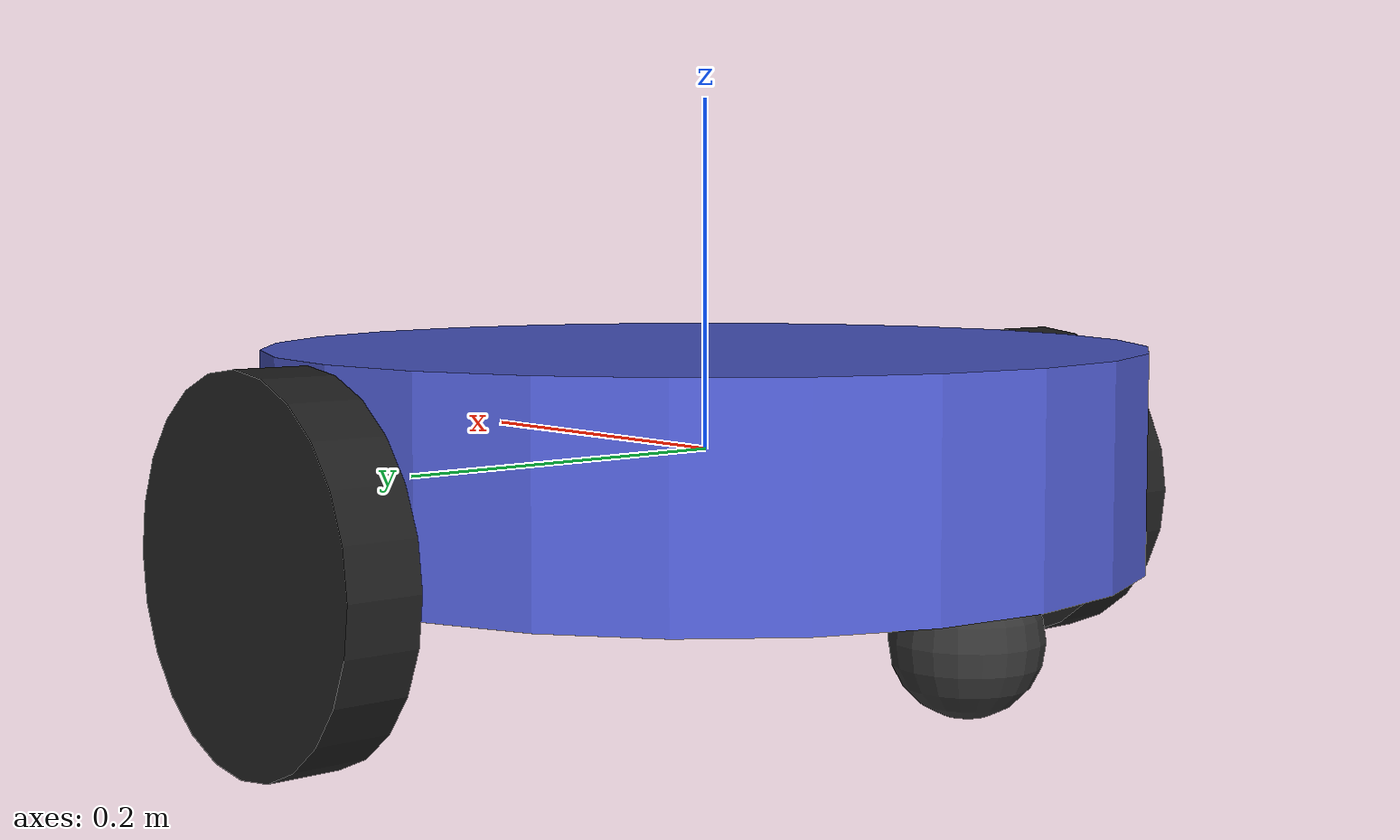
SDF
<?xml version="1.0"?>
<sdf version="1.9">
  <model name="patrol_bot">

    <!-- ── Chassis ──────────────────────────────────────────────────────────── -->
    <link name="base_link">
      <inertial>
        <mass>8.0</mass>
        <inertia>
          <ixx>0.30</ixx><iyy>0.30</iyy><izz>0.50</izz>
          <ixy>0</ixy><ixz>0</ixz><iyz>0</iyz>
        </inertia>
      </inertial>
      <collision name="collision">
        <geometry>
          <cylinder><radius>0.25</radius><length>0.12</length></cylinder>
        </geometry>
      </collision>
      <visual name="visual">
        <geometry>
          <cylinder><radius>0.25</radius><length>0.12</length></cylinder>
        </geometry>
        <material>
          <ambient>0.25 0.30 0.70 1</ambient>
          <diffuse>0.30 0.35 0.80 1</diffuse>
        </material>
      </visual>
    </link>

    <!-- ── Left wheel (y+) ───────────────────────────────────────────────── -->
    <link name="left_wheel">
      <pose>0 0.28 -0.04 -1.5707963 0 0</pose>
      <inertial>
        <mass>0.5</mass>
        <inertia>
          <ixx>0.0013</ixx><iyy>0.0013</iyy><izz>0.0025</izz>
          <ixy>0</ixy><ixz>0</ixz><iyz>0</iyz>
        </inertia>
      </inertial>
      <collision name="collision">
        <geometry>
          <cylinder><radius>0.10</radius><length>0.04</length></cylinder>
        </geometry>
        <surface><friction><ode>
          <mu>1.0</mu><mu2>0.5</mu2>
        </ode></friction></surface>
      </collision>
      <visual name="visual">
        <geometry>
          <cylinder><radius>0.10</radius><length>0.04</length></cylinder>
        </geometry>
        <material>
          <ambient>0.08 0.08 0.08 1</ambient>
          <diffuse>0.12 0.12 0.12 1</diffuse>
        </material>
      </visual>
    </link>

    <joint name="left_wheel_joint" type="revolute">
      <parent>base_link</parent>
      <child>left_wheel</child>
      <axis>
        <!-- Wheel spin axis = Y in model frame (left-right), expressed in model frame -->
        <xyz expressed_in="__model__">0 1 0</xyz>
        <dynamics><friction>0.01</friction><damping>0.01</damping></dynamics>
        <limit><lower>-1e9</lower><upper>1e9</upper><effort>1e6</effort></limit>
      </axis>
    </joint>

    <!-- ── Right wheel (y-) ──────────────────────────────────────────────── -->
    <link name="right_wheel">
      <pose>0 -0.28 -0.04 1.5707963 0 0</pose>
      <inertial>
        <mass>0.5</mass>
        <inertia>
          <ixx>0.0013</ixx><iyy>0.0013</iyy><izz>0.0025</izz>
          <ixy>0</ixy><ixz>0</ixz><iyz>0</iyz>
        </inertia>
      </inertial>
      <collision name="collision">
        <geometry>
          <cylinder><radius>0.10</radius><length>0.04</length></cylinder>
        </geometry>
        <surface><friction><ode>
          <mu>1.0</mu><mu2>0.5</mu2>
        </ode></friction></surface>
      </collision>
      <visual name="visual">
        <geometry>
          <cylinder><radius>0.10</radius><length>0.04</length></cylinder>
        </geometry>
        <material>
          <ambient>0.08 0.08 0.08 1</ambient>
          <diffuse>0.12 0.12 0.12 1</diffuse>
        </material>
      </visual>
    </link>

    <joint name="right_wheel_joint" type="revolute">
      <parent>base_link</parent>
      <child>right_wheel</child>
      <axis>
        <xyz expressed_in="__model__">0 1 0</xyz>
        <dynamics><friction>0.01</friction><damping>0.01</damping></dynamics>
        <limit><lower>-1e9</lower><upper>1e9</upper><effort>1e6</effort></limit>
      </axis>
    </joint>

    <!-- ── Front caster ──────────────────────────────────────────────────── -->
    <link name="caster">
      <pose>0.20 0 -0.08 0 0 0</pose>
      <inertial>
        <mass>0.1</mass>
        <inertia>
          <ixx>0.0001</ixx><iyy>0.0001</iyy><izz>0.0001</izz>
          <ixy>0</ixy><ixz>0</ixz><iyz>0</iyz>
        </inertia>
      </inertial>
      <collision name="collision">
        <geometry><sphere><radius>0.04</radius></sphere></geometry>
        <surface><friction><ode>
          <mu>0.0</mu><mu2>0.0</mu2>
        </ode></friction></surface>
      </collision>
      <visual name="visual">
        <geometry><sphere><radius>0.04</radius></sphere></geometry>
        <material>
          <ambient>0.15 0.15 0.15 1</ambient>
          <diffuse>0.20 0.20 0.20 1</diffuse>
        </material>
      </visual>
    </link>

    <joint name="caster_joint" type="ball">
      <parent>base_link</parent>
      <child>caster</child>
    </joint>

    <!-- ── Rear caster ───────────────────────────────────────────────────── -->
    <link name="caster_rear">
      <pose>-0.20 0 -0.08 0 0 0</pose>
      <inertial>
        <mass>0.1</mass>
        <inertia>
          <ixx>0.0001</ixx><iyy>0.0001</iyy><izz>0.0001</izz>
          <ixy>0</ixy><ixz>0</ixz><iyz>0</iyz>
        </inertia>
      </inertial>
      <collision name="collision">
        <geometry><sphere><radius>0.04</radius></sphere></geometry>
        <surface><friction><ode>
          <mu>0.0</mu><mu2>0.0</mu2>
        </ode></friction></surface>
      </collision>
      <visual name="visual">
        <geometry><sphere><radius>0.04</radius></sphere></geometry>
        <material>
          <ambient>0.15 0.15 0.15 1</ambient>
          <diffuse>0.20 0.20 0.20 1</diffuse>
        </material>
      </visual>
    </link>

    <joint name="caster_rear_joint" type="ball">
      <parent>base_link</parent>
      <child>caster_rear</child>
    </joint>

    <!-- ── DiffDrive plugin ───────────────────────────────────────────────── -->
    <plugin filename="gz-sim-diff-drive-system"
            name="gz::sim::systems::DiffDrive">
      <left_joint>left_wheel_joint</left_joint>
      <right_joint>right_wheel_joint</right_joint>
      <wheel_separation>0.56</wheel_separation>
      <wheel_radius>0.10</wheel_radius>
      <frame_id>odom</frame_id>
      <child_frame_id>base_link</child_frame_id>
      <max_linear_acceleration>1.0</max_linear_acceleration>
      <min_linear_acceleration>-1.0</min_linear_acceleration>
      <max_angular_acceleration>2.0</max_angular_acceleration>
      <min_angular_acceleration>-2.0</min_angular_acceleration>
    </plugin>

  </model>
</sdf>
